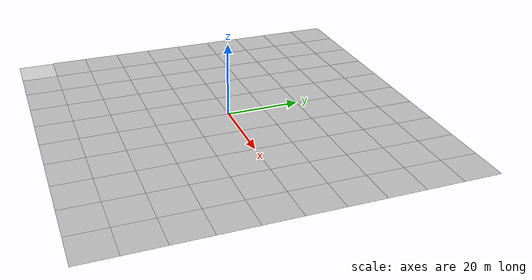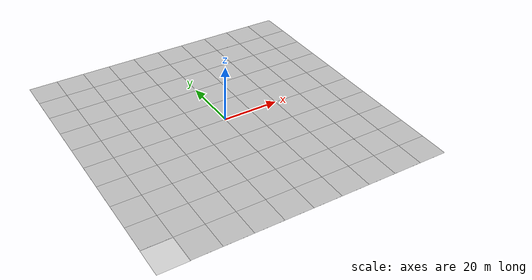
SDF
<sdf version="1.6">
 <world name="default">
  <physics type="ode">
   <ode>
    <solver><type>quick</type><iters>100</iters><sor>1.0</sor></solver>
    <constraints>
     <cfm>0.0</cfm>
     <erp>0.2</erp>
     <contact_max_correcting_vel>0.1</contact_max_correcting_vel>
     <contact_surface_layer>0.0</contact_surface_layer>
    </constraints>
   </ode>
   <real_time_update_rate>-1</real_time_update_rate>
  </physics>
  <gravity>0 0 -9.8</gravity>
  <include><uri>model://sun</uri></include>
  <include>
   <uri>file:///home/wintery/Projects/gazebo/models/orb_optimized_ground</uri>
   <name>ground_plane</name>
  </include>
 </world>
</sdf>

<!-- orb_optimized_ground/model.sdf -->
<sdf version="1.6">
  <model name="orb_optimized_ground">
    <static>true</static>
    <link name="ground_link">
      <pose>0 0 0 0 0 0</pose>
      <collision name="collision">
        <geometry>
          <plane>
            <normal>0 0 1</normal>
            <size>100 100</size>
          </plane>
        </geometry>
        <surface>
          <friction>
            <ode>
              <mu>1.0</mu>
              <mu2>1.0</mu2>
            </ode>
          </friction>
        </surface>
      </collision>
      <visual name="tile_00_00">
        <pose>-45.000 -45.000 0.001 0 0 0.00000</pose>
        <cast_shadows>false</cast_shadows>
        <geometry>
          <plane>
            <normal>0 0 1</normal>
            <size>10.0 10.0</size>
          </plane>
        </geometry>
        <material>
          <script>
            <uri>file:///home/wintery/Projects/gazebo/models/orb_optimized_ground/materials/scripts</uri>
            <uri>file:///home/wintery/Projects/gazebo/models/orb_optimized_ground/materials/textures</uri>
            <name>ORBOptimized/Tile000</name>
          </script>
        </material>
      </visual>
      <visual name="tile_00_01">
        <pose>-35.000 -45.000 0.001 0 0 0.00000</pose>
        <cast_shadows>false</cast_shadows>
        <geometry>
          <plane>
            <normal>0 0 1</normal>
            <size>10.0 10.0</size>
          </plane>
        </geometry>
        <material>
          <script>
            <uri>file:///home/wintery/Projects/gazebo/models/orb_optimized_ground/materials/scripts</uri>
            <uri>file:///home/wintery/Projects/gazebo/models/orb_optimized_ground/materials/textures</uri>
            <name>ORBOptimized/Tile001</name>
          </script>
        </material>
      </visual>
      <visual name="tile_00_02">
        <pose>-25.000 -45.000 0.001 0 0 0.00000</pose>
        <cast_shadows>false</cast_shadows>
        <geometry>
          <plane>
            <normal>0 0 1</normal>
            <size>10.0 10.0</size>
          </plane>
        </geometry>
        <material>
          <script>
            <uri>file:///home/wintery/Projects/gazebo/models/orb_optimized_ground/materials/scripts</uri>
            <uri>file:///home/wintery/Projects/gazebo/models/orb_optimized_ground/materials/textures</uri>
            <name>ORBOptimized/Tile002</name>
          </script>
        </material>
      </visual>
      <visual name="tile_00_03">
        <pose>-15.000 -45.000 0.001 0 0 0.00000</pose>
        <cast_shadows>false</cast_shadows>
        <geometry>
          <plane>
            <normal>0 0 1</normal>
            <size>10.0 10.0</size>
          </plane>
        </geometry>
        <material>
          <script>
            <uri>file:///home/wintery/Projects/gazebo/models/orb_optimized_ground/materials/scripts</uri>
            <uri>file:///home/wintery/Projects/gazebo/models/orb_optimized_ground/materials/textures</uri>
            <name>ORBOptimized/Tile003</name>
          </script>
        </material>
      </visual>
      <visual name="tile_00_04">
        <pose>-5.000 -45.000 0.001 0 0 0.00000</pose>
        <cast_shadows>false</cast_shadows>
        <geometry>
          <plane>
            <normal>0 0 1</normal>
            <size>10.0 10.0</size>
          </plane>
        </geometry>
        <material>
          <script>
            <uri>file:///home/wintery/Projects/gazebo/models/orb_optimized_ground/materials/scripts</uri>
            <uri>file:///home/wintery/Projects/gazebo/models/orb_optimized_ground/materials/textures</uri>
            <name>ORBOptimized/Tile004</name>
          </script>
        </material>
      </visual>
      <visual name="tile_00_05">
        <pose>5.000 -45.000 0.001 0 0 0.00000</pose>
        <cast_shadows>false</cast_shadows>
        <geometry>
          <plane>
            <normal>0 0 1</normal>
            <size>10.0 10.0</size>
          </plane>
        </geometry>
        <material>
          <script>
            <uri>file:///home/wintery/Projects/gazebo/models/orb_optimized_ground/materials/scripts</uri>
            <uri>file:///home/wintery/Projects/gazebo/models/orb_optimized_ground/materials/textures</uri>
            <name>ORBOptimized/Tile005</name>
          </script>
        </material>
      </visual>
      <visual name="tile_00_06">
        <pose>15.000 -45.000 0.001 0 0 0.00000</pose>
        <cast_shadows>false</cast_shadows>
        <geometry>
          <plane>
            <normal>0 0 1</normal>
            <size>10.0 10.0</size>
          </plane>
        </geometry>
        <material>
          <script>
            <uri>file:///home/wintery/Projects/gazebo/models/orb_optimized_ground/materials/scripts</uri>
            <uri>file:///home/wintery/Projects/gazebo/models/orb_optimized_ground/materials/textures</uri>
            <name>ORBOptimized/Tile006</name>
          </script>
        </material>
      </visual>
      <visual name="tile_00_07">
        <pose>25.000 -45.000 0.001 0 0 0.00000</pose>
        <cast_shadows>false</cast_shadows>
        <geometry>
          <plane>
            <normal>0 0 1</normal>
            <size>10.0 10.0</size>
          </plane>
        </geometry>
        <material>
          <script>
            <uri>file:///home/wintery/Projects/gazebo/models/orb_optimized_ground/materials/scripts</uri>
            <uri>file:///home/wintery/Projects/gazebo/models/orb_optimized_ground/materials/textures</uri>
            <name>ORBOptimized/Tile007</name>
          </script>
        </material>
      </visual>
      <visual name="tile_00_08">
        <pose>35.000 -45.000 0.001 0 0 0.00000</pose>
        <cast_shadows>false</cast_shadows>
        <geometry>
          <plane>
            <normal>0 0 1</normal>
            <size>10.0 10.0</size>
          </plane>
        </geometry>
        <material>
          <script>
            <uri>file:///home/wintery/Projects/gazebo/models/orb_optimized_ground/materials/scripts</uri>
            <uri>file:///home/wintery/Projects/gazebo/models/orb_optimized_ground/materials/textures</uri>
            <name>ORBOptimized/Tile008</name>
          </script>
        </material>
      </visual>
      <visual name="tile_00_09">
        <pose>45.000 -45.000 0.001 0 0 0.00000</pose>
        <cast_shadows>false</cast_shadows>
        <geometry>
          <plane>
            <normal>0 0 1</normal>
            <size>10.0 10.0</size>
          </plane>
        </geometry>
        <material>
          <script>
            <uri>file:///home/wintery/Projects/gazebo/models/orb_optimized_ground/materials/scripts</uri>
            <uri>file:///home/wintery/Projects/gazebo/models/orb_optimized_ground/materials/textures</uri>
            <name>ORBOptimized/Tile009</name>
          </script>
        </material>
      </visual>
      <visual name="tile_01_00">
        <pose>-45.000 -35.000 0.001 0 0 0.00000</pose>
        <cast_shadows>false</cast_shadows>
        <geometry>
          <plane>
            <normal>0 0 1</normal>
            <size>10.0 10.0</size>
          </plane>
        </geometry>
        <material>
          <script>
            <uri>file:///home/wintery/Projects/gazebo/models/orb_optimized_ground/materials/scripts</uri>
            <uri>file:///home/wintery/Projects/gazebo/models/orb_optimized_ground/materials/textures</uri>
            <name>ORBOptimized/Tile010</name>
          </script>
        </material>
      </visual>
      <visual name="tile_01_01">
        <pose>-35.000 -35.000 0.001 0 0 0.00000</pose>
        <cast_shadows>false</cast_shadows>
        <geometry>
          <plane>
            <normal>0 0 1</normal>
            <size>10.0 10.0</size>
          </plane>
        </geometry>
        <material>
          <script>
            <uri>file:///home/wintery/Projects/gazebo/models/orb_optimized_ground/materials/scripts</uri>
            <uri>file:///home/wintery/Projects/gazebo/models/orb_optimized_ground/materials/textures</uri>
            <name>ORBOptimized/Tile011</name>
          </script>
        </material>
      </visual>
      <visual name="tile_01_02">
        <pose>-25.000 -35.000 0.001 0 0 0.00000</pose>
        <cast_shadows>false</cast_shadows>
        <geometry>
          <plane>
            <normal>0 0 1</normal>
            <size>10.0 10.0</size>
          </plane>
        </geometry>
        <material>
          <script>
            <uri>file:///home/wintery/Projects/gazebo/models/orb_optimized_ground/materials/scripts</uri>
            <uri>file:///home/wintery/Projects/gazebo/models/orb_optimized_ground/materials/textures</uri>
            <name>ORBOptimized/Tile012</name>
          </script>
        </material>
      </visual>
      <visual name="tile_01_03">
        <pose>-15.000 -35.000 0.001 0 0 0.00000</pose>
        <cast_shadows>false</cast_shadows>
        <geometry>
          <plane>
            <normal>0 0 1</normal>
            <size>10.0 10.0</size>
          </plane>
        </geometry>
        <material>
          <script>
            <uri>file:///home/wintery/Projects/gazebo/models/orb_optimized_ground/materials/scripts</uri>
            <uri>file:///home/wintery/Projects/gazebo/models/orb_optimized_ground/materials/textures</uri>
            <name>ORBOptimized/Tile013</name>
          </script>
        </material>
      </visual>
      <visual name="tile_01_04">
        <pose>-5.000 -35.000 0.001 0 0 0.00000</pose>
        <cast_shadows>false</cast_shadows>
        <geometry>
          <plane>
            <normal>0 0 1</normal>
            <size>10.0 10.0</size>
          </plane>
        </geometry>
        <material>
          <script>
            <uri>file:///home/wintery/Projects/gazebo/models/orb_optimized_ground/materials/scripts</uri>
            <uri>file:///home/wintery/Projects/gazebo/models/orb_optimized_ground/materials/textures</uri>
            <name>ORBOptimized/Tile014</name>
          </script>
        </material>
      </visual>
      <visual name="tile_01_05">
        <pose>5.000 -35.000 0.001 0 0 0.00000</pose>
        <cast_shadows>false</cast_shadows>
        <geometry>
          <plane>
            <normal>0 0 1</normal>
            <size>10.0 10.0</size>
          </plane>
        </geometry>
        <material>
          <script>
            <uri>file:///home/wintery/Projects/gazebo/models/orb_optimized_ground/materials/scripts</uri>
            <uri>file:///home/wintery/Projects/gazebo/models/orb_optimized_ground/materials/textures</uri>
            <name>ORBOptimized/Tile015</name>
          </script>
        </material>
      </visual>
      <visual name="tile_01_06">
        <pose>15.000 -35.000 0.001 0 0 0.00000</pose>
        <cast_shadows>false</cast_shadows>
        <geometry>
          <plane>
            <normal>0 0 1</normal>
            <size>10.0 10.0</size>
          </plane>
        </geometry>
        <material>
          <script>
            <uri>file:///home/wintery/Projects/gazebo/models/orb_optimized_ground/materials/scripts</uri>
            <uri>file:///home/wintery/Projects/gazebo/models/orb_optimized_ground/materials/textures</uri>
            <name>ORBOptimized/Tile016</name>
          </script>
        </material>
      </visual>
      <visual name="tile_01_07">
        <pose>25.000 -35.000 0.001 0 0 0.00000</pose>
        <cast_shadows>false</cast_shadows>
        <geometry>
          <plane>
            <normal>0 0 1</normal>
            <size>10.0 10.0</size>
          </plane>
        </geometry>
        <material>
          <script>
            <uri>file:///home/wintery/Projects/gazebo/models/orb_optimized_ground/materials/scripts</uri>
            <uri>file:///home/wintery/Projects/gazebo/models/orb_optimized_ground/materials/textures</uri>
            <name>ORBOptimized/Tile017</name>
          </script>
        </material>
      </visual>
      <visual name="tile_01_08">
        <pose>35.000 -35.000 0.001 0 0 0.00000</pose>
        <cast_shadows>false</cast_shadows>
        <geometry>
          <plane>
            <normal>0 0 1</normal>
            <size>10.0 10.0</size>
          </plane>
        </geometry>
        <material>
          <script>
            <uri>file:///home/wintery/Projects/gazebo/models/orb_optimized_ground/materials/scripts</uri>
            <uri>file:///home/wintery/Projects/gazebo/models/orb_optimized_ground/materials/textures</uri>
            <name>ORBOptimized/Tile018</name>
          </script>
        </material>
      </visual>
      <visual name="tile_01_09">
        <pose>45.000 -35.000 0.001 0 0 0.00000</pose>
        <cast_shadows>false</cast_shadows>
        <geometry>
          <plane>
            <normal>0 0 1</normal>
            <size>10.0 10.0</size>
          </plane>
        </geometry>
        <material>
          <script>
            <uri>file:///home/wintery/Projects/gazebo/models/orb_optimized_ground/materials/scripts</uri>
            <uri>file:///home/wintery/Projects/gazebo/models/orb_optimized_ground/materials/textures</uri>
            <name>ORBOptimized/Tile019</name>
          </script>
        </material>
      </visual>
      <visual name="tile_02_00">
        <pose>-45.000 -25.000 0.001 0 0 0.00000</pose>
        <cast_shadows>false</cast_shadows>
        <geometry>
          <plane>
            <normal>0 0 1</normal>
            <size>10.0 10.0</size>
          </plane>
        </geometry>
        <material>
          <script>
            <uri>file:///home/wintery/Projects/gazebo/models/orb_optimized_ground/materials/scripts</uri>
            <uri>file:///home/wintery/Projects/gazebo/models/orb_optimized_ground/materials/textures</uri>
            <name>ORBOptimized/Tile020</name>
          </script>
        </material>
      </visual>
      <visual name="tile_02_01">
        <pose>-35.000 -25.000 0.001 0 0 0.00000</pose>
        <cast_shadows>false</cast_shadows>
        <geometry>
          <plane>
            <normal>0 0 1</normal>
            <size>10.0 10.0</size>
          </plane>
        </geometry>
        <material>
          <script>
            <uri>file:///home/wintery/Projects/gazebo/models/orb_optimized_ground/materials/scripts</uri>
            <uri>file:///home/wintery/Projects/gazebo/models/orb_optimized_ground/materials/textures</uri>
            <name>ORBOptimized/Tile021</name>
          </script>
        </material>
      </visual>
      <visual name="tile_02_02">
        <pose>-25.000 -25.000 0.001 0 0 0.00000</pose>
        <cast_shadows>false</cast_shadows>
        <geometry>
          <plane>
            <normal>0 0 1</normal>
            <size>10.0 10.0</size>
          </plane>
        </geometry>
        <material>
          <script>
            <uri>file:///home/wintery/Projects/gazebo/models/orb_optimized_ground/materials/scripts</uri>
            <uri>file:///home/wintery/Projects/gazebo/models/orb_optimized_ground/materials/textures</uri>
            <name>ORBOptimized/Tile022</name>
          </script>
        </material>
      </visual>
      <visual name="tile_02_03">
        <pose>-15.000 -25.000 0.001 0 0 0.00000</pose>
        <cast_shadows>false</cast_shadows>
        <geometry>
          <plane>
            <normal>0 0 1</normal>
            <size>10.0 10.0</size>
          </plane>
        </geometry>
        <material>
          <script>
            <uri>file:///home/wintery/Projects/gazebo/models/orb_optimized_ground/materials/scripts</uri>
            <uri>file:///home/wintery/Projects/gazebo/models/orb_optimized_ground/materials/textures</uri>
            <name>ORBOptimized/Tile023</name>
          </script>
        </material>
      </visual>
      <visual name="tile_02_04">
        <pose>-5.000 -25.000 0.001 0 0 0.00000</pose>
        <cast_shadows>false</cast_shadows>
        <geometry>
          <plane>
            <normal>0 0 1</normal>
            <size>10.0 10.0</size>
          </plane>
        </geometry>
        <material>
          <script>
            <uri>file:///home/wintery/Projects/gazebo/models/orb_optimized_ground/materials/scripts</uri>
            <uri>file:///home/wintery/Projects/gazebo/models/orb_optimized_ground/materials/textures</uri>
            <name>ORBOptimized/Tile024</name>
          </script>
        </material>
      </visual>
      <visual name="tile_02_05">
        <pose>5.000 -25.000 0.001 0 0 0.00000</pose>
        <cast_shadows>false</cast_shadows>
        <geometry>
          <plane>
            <normal>0 0 1</normal>
            <size>10.0 10.0</size>
          </plane>
        </geometry>
        <material>
          <script>
            <uri>file:///home/wintery/Projects/gazebo/models/orb_optimized_ground/materials/scripts</uri>
            <uri>file:///home/wintery/Projects/gazebo/models/orb_optimized_ground/materials/textures</uri>
            <name>ORBOptimized/Tile025</name>
          </script>
        </material>
      </visual>
      <visual name="tile_02_06">
        <pose>15.000 -25.000 0.001 0 0 0.00000</pose>
        <cast_shadows>false</cast_shadows>
        <geometry>
          <plane>
            <normal>0 0 1</normal>
            <size>10.0 10.0</size>
          </plane>
        </geometry>
        <material>
          <script>
            <uri>file:///home/wintery/Projects/gazebo/models/orb_optimized_ground/materials/scripts</uri>
            <uri>file:///home/wintery/Projects/gazebo/models/orb_optimized_ground/materials/textures</uri>
            <name>ORBOptimized/Tile026</name>
          </script>
        </material>
      </visual>
      <visual name="tile_02_07">
        <pose>25.000 -25.000 0.001 0 0 0.00000</pose>
        <cast_shadows>false</cast_shadows>
        <geometry>
          <plane>
            <normal>0 0 1</normal>
            <size>10.0 10.0</size>
          </plane>
        </geometry>
        <material>
          <script>
            <uri>file:///home/wintery/Projects/gazebo/models/orb_optimized_ground/materials/scripts</uri>
            <uri>file:///home/wintery/Projects/gazebo/models/orb_optimized_ground/materials/textures</uri>
            <name>ORBOptimized/Tile027</name>
          </script>
        </material>
      </visual>
      <visual name="tile_02_08">
        <pose>35.000 -25.000 0.001 0 0 0.00000</pose>
        <cast_shadows>false</cast_shadows>
        <geometry>
          <plane>
            <normal>0 0 1</normal>
            <size>10.0 10.0</size>
          </plane>
        </geometry>
        <material>
          <script>
            <uri>file:///home/wintery/Projects/gazebo/models/orb_optimized_ground/materials/scripts</uri>
            <uri>file:///home/wintery/Projects/gazebo/models/orb_optimized_ground/materials/textures</uri>
            <name>ORBOptimized/Tile028</name>
          </script>
        </material>
      </visual>
      <visual name="tile_02_09">
        <pose>45.000 -25.000 0.001 0 0 0.00000</pose>
        <cast_shadows>false</cast_shadows>
        <geometry>
          <plane>
            <normal>0 0 1</normal>
            <size>10.0 10.0</size>
          </plane>
        </geometry>
        <material>
          <script>
            <uri>file:///home/wintery/Projects/gazebo/models/orb_optimized_ground/materials/scripts</uri>
            <uri>file:///home/wintery/Projects/gazebo/models/orb_optimized_ground/materials/textures</uri>
            <name>ORBOptimized/Tile029</name>
          </script>
        </material>
      </visual>
      <visual name="tile_03_00">
        <pose>-45.000 -15.000 0.001 0 0 0.00000</pose>
        <cast_shadows>false</cast_shadows>
        <geometry>
          <plane>
            <normal>0 0 1</normal>
            <size>10.0 10.0</size>
          </plane>
        </geometry>
        <material>
          <script>
            <uri>file:///home/wintery/Projects/gazebo/models/orb_optimized_ground/materials/scripts</uri>
            <uri>file:///home/wintery/Projects/gazebo/models/orb_optimized_ground/materials/textures</uri>
            <name>ORBOptimized/Tile030</name>
          </script>
        </material>
      </visual>
      <visual name="tile_03_01">
        <pose>-35.000 -15.000 0.001 0 0 0.00000</pose>
        <cast_shadows>false</cast_shadows>
        <geometry>
          <plane>
            <normal>0 0 1</normal>
            <size>10.0 10.0</size>
          </plane>
        </geometry>
        <material>
          <script>
            <uri>file:///home/wintery/Projects/gazebo/models/orb_optimized_ground/materials/scripts</uri>
            <uri>file:///home/wintery/Projects/gazebo/models/orb_optimized_ground/materials/textures</uri>
            <name>ORBOptimized/Tile031</name>
          </script>
        </material>
      </visual>
      <visual name="tile_03_02">
        <pose>-25.000 -15.000 0.001 0 0 0.00000</pose>
        <cast_shadows>false</cast_shadows>
        <geometry>
          <plane>
            <normal>0 0 1</normal>
            <size>10.0 10.0</size>
          </plane>
        </geometry>
        <material>
          <script>
            <uri>file:///home/wintery/Projects/gazebo/models/orb_optimized_ground/materials/scripts</uri>
            <uri>file:///home/wintery/Projects/gazebo/models/orb_optimized_ground/materials/textures</uri>
            <name>ORBOptimized/Tile032</name>
          </script>
        </material>
      </visual>
      <visual name="tile_03_03">
        <pose>-15.000 -15.000 0.001 0 0 0.00000</pose>
        <cast_shadows>false</cast_shadows>
        <geometry>
          <plane>
            <normal>0 0 1</normal>
            <size>10.0 10.0</size>
          </plane>
        </geometry>
        <material>
          <script>
            <uri>file:///home/wintery/Projects/gazebo/models/orb_optimized_ground/materials/scripts</uri>
            <uri>file:///home/wintery/Projects/gazebo/models/orb_optimized_ground/materials/textures</uri>
            <name>ORBOptimized/Tile033</name>
          </script>
        </material>
      </visual>
      <visual name="tile_03_04">
        <pose>-5.000 -15.000 0.001 0 0 0.00000</pose>
        <cast_shadows>false</cast_shadows>
        <geometry>
          <plane>
            <normal>0 0 1</normal>
            <size>10.0 10.0</size>
          </plane>
        </geometry>
        <material>
          <script>
            <uri>file:///home/wintery/Projects/gazebo/models/orb_optimized_ground/materials/scripts</uri>
            <uri>file:///home/wintery/Projects/gazebo/models/orb_optimized_ground/materials/textures</uri>
            <name>ORBOptimized/Tile034</name>
          </script>
        </material>
      </visual>
      <visual name="tile_03_05">
        <pose>5.000 -15.000 0.001 0 0 0.00000</pose>
        <cast_shadows>false</cast_shadows>
        <geometry>
          <plane>
            <normal>0 0 1</normal>
            <size>10.0 10.0</size>
          </plane>
        </geometry>
        <material>
          <script>
            <uri>file:///home/wintery/Projects/gazebo/models/orb_optimized_ground/materials/scripts</uri>
            <uri>file:///home/wintery/Projects/gazebo/models/orb_optimized_ground/materials/textures</uri>
            <name>ORBOptimized/Tile035</name>
          </script>
        </material>
      </visual>
      <visual name="tile_03_06">
        <pose>15.000 -15.000 0.001 0 0 0.00000</pose>
        <cast_shadows>false</cast_shadows>
        <geometry>
          <plane>
            <normal>0 0 1</normal>
            <size>10.0 10.0</size>
          </plane>
        </geometry>
        <material>
          <script>
            <uri>file:///home/wintery/Projects/gazebo/models/orb_optimized_ground/materials/scripts</uri>
            <uri>file:///home/wintery/Projects/gazebo/models/orb_optimized_ground/materials/textures</uri>
            <name>ORBOptimized/Tile036</name>
          </script>
        </material>
      </visual>
      <visual name="tile_03_07">
        <pose>25.000 -15.000 0.001 0 0 0.00000</pose>
        <cast_shadows>false</cast_shadows>
        <geometry>
          <plane>
            <normal>0 0 1</normal>
            <size>10.0 10.0</size>
          </plane>
        </geometry>
        <material>
          <script>
            <uri>file:///home/wintery/Projects/gazebo/models/orb_optimized_ground/materials/scripts</uri>
            <uri>file:///home/wintery/Projects/gazebo/models/orb_optimized_ground/materials/textures</uri>
            <name>ORBOptimized/Tile037</name>
          </script>
        </material>
      </visual>
      <visual name="tile_03_08">
        <pose>35.000 -15.000 0.001 0 0 0.00000</pose>
        <cast_shadows>false</cast_shadows>
        <geometry>
          <plane>
            <normal>0 0 1</normal>
            <size>10.0 10.0</size>
          </plane>
        </geometry>
        <material>
          <script>
            <uri>file:///home/wintery/Projects/gazebo/models/orb_optimized_ground/materials/scripts</uri>
            <uri>file:///home/wintery/Projects/gazebo/models/orb_optimized_ground/materials/textures</uri>
            <name>ORBOptimized/Tile038</name>
          </script>
        </material>
      </visual>
      <visual name="tile_03_09">
        <pose>45.000 -15.000 0.001 0 0 0.00000</pose>
        <cast_shadows>false</cast_shadows>
        <geometry>
          <plane>
            <normal>0 0 1</normal>
            <size>10.0 10.0</size>
          </plane>
        </geometry>
        <material>
          <script>
            <uri>file:///home/wintery/Projects/gazebo/models/orb_optimized_ground/materials/scripts</uri>
            <uri>file:///home/wintery/Projects/gazebo/models/orb_optimized_ground/materials/textures</uri>
            <name>ORBOptimized/Tile039</name>
          </script>
        </material>
      </visual>
      <visual name="tile_04_00">
        <pose>-45.000 -5.000 0.001 0 0 0.00000</pose>
        <cast_shadows>false</cast_shadows>
        <geometry>
          <plane>
            <normal>0 0 1</normal>
            <size>10.0 10.0</size>
          </plane>
        </geometry>
        <material>
          <script>
            <uri>file:///home/wintery/Projects/gazebo/models/orb_optimized_ground/materials/scripts</uri>
            <uri>file:///home/wintery/Projects/gazebo/models/orb_optimized_ground/materials/textures</uri>
            <name>ORBOptimized/Tile040</name>
          </script>
        </material>
      </visual>
      <visual name="tile_04_01">
        <pose>-35.000 -5.000 0.001 0 0 0.00000</pose>
        <cast_shadows>false</cast_shadows>
        <geometry>
          <plane>
            <normal>0 0 1</normal>
            <size>10.0 10.0</size>
          </plane>
        </geometry>
        <material>
          <script>
            <uri>file:///home/wintery/Projects/gazebo/models/orb_optimized_ground/materials/scripts</uri>
            <uri>file:///home/wintery/Projects/gazebo/models/orb_optimized_ground/materials/textures</uri>
            <name>ORBOptimized/Tile041</name>
          </script>
        </material>
      </visual>
      <visual name="tile_04_02">
        <pose>-25.000 -5.000 0.001 0 0 0.00000</pose>
        <cast_shadows>false</cast_shadows>
        <geometry>
          <plane>
            <normal>0 0 1</normal>
            <size>10.0 10.0</size>
          </plane>
        </geometry>
        <material>
          <script>
            <uri>file:///home/wintery/Projects/gazebo/models/orb_optimized_ground/materials/scripts</uri>
            <uri>file:///home/wintery/Projects/gazebo/models/orb_optimized_ground/materials/textures</uri>
            <name>ORBOptimized/Tile042</name>
          </script>
        </material>
      </visual>
      <visual name="tile_04_03">
        <pose>-15.000 -5.000 0.001 0 0 0.00000</pose>
        <cast_shadows>false</cast_shadows>
        <geometry>
          <plane>
            <normal>0 0 1</normal>
            <size>10.0 10.0</size>
          </plane>
        </geometry>
        <material>
          <script>
            <uri>file:///home/wintery/Projects/gazebo/models/orb_optimized_ground/materials/scripts</uri>
            <uri>file:///home/wintery/Projects/gazebo/models/orb_optimized_ground/materials/textures</uri>
            <name>ORBOptimized/Tile043</name>
          </script>
        </material>
      </visual>
      <visual name="tile_04_04">
        <pose>-5.000 -5.000 0.001 0 0 0.00000</pose>
        <cast_shadows>false</cast_shadows>
        <geometry>
          <plane>
            <normal>0 0 1</normal>
            <size>10.0 10.0</size>
          </plane>
        </geometry>
        <material>
          <script>
            <uri>file:///home/wintery/Projects/gazebo/models/orb_optimized_ground/materials/scripts</uri>
            <uri>file:///home/wintery/Projects/gazebo/models/orb_optimized_ground/materials/textures</uri>
            <name>ORBOptimized/Tile044</name>
          </script>
        </material>
      </visual>
      <visual name="tile_04_05">
        <pose>5.000 -5.000 0.001 0 0 0.00000</pose>
        <cast_shadows>false</cast_shadows>
        <geometry>
          <plane>
            <normal>0 0 1</normal>
            <size>10.0 10.0</size>
          </plane>
        </geometry>
        <material>
          <script>
            <uri>file:///home/wintery/Projects/gazebo/models/orb_optimized_ground/materials/scripts</uri>
            <uri>file:///home/wintery/Projects/gazebo/models/orb_optimized_ground/materials/textures</uri>
            <name>ORBOptimized/Tile045</name>
          </script>
        </material>
      </visual>
      <visual name="tile_04_06">
        <pose>15.000 -5.000 0.001 0 0 0.00000</pose>
        <cast_shadows>false</cast_shadows>
        <geometry>
          <plane>
            <normal>0 0 1</normal>
            <size>10.0 10.0</size>
          </plane>
        </geometry>
        <material>
          <script>
            <uri>file:///home/wintery/Projects/gazebo/models/orb_optimized_ground/materials/scripts</uri>
            <uri>file:///home/wintery/Projects/gazebo/models/orb_optimized_ground/materials/textures</uri>
            <name>ORBOptimized/Tile046</name>
          </script>
        </material>
      </visual>
      <visual name="tile_04_07">
        <pose>25.000 -5.000 0.001 0 0 0.00000</pose>
        <cast_shadows>false</cast_shadows>
        <geometry>
          <plane>
            <normal>0 0 1</normal>
            <size>10.0 10.0</size>
          </plane>
        </geometry>
        <material>
          <script>
            <uri>file:///home/wintery/Projects/gazebo/models/orb_optimized_ground/materials/scripts</uri>
            <uri>file:///home/wintery/Projects/gazebo/models/orb_optimized_ground/materials/textures</uri>
            <name>ORBOptimized/Tile047</name>
          </script>
        </material>
      </visual>
      <visual name="tile_04_08">
        <pose>35.000 -5.000 0.001 0 0 0.00000</pose>
        <cast_shadows>false</cast_shadows>
        <geometry>
          <plane>
            <normal>0 0 1</normal>
            <size>10.0 10.0</size>
          </plane>
        </geometry>
        <material>
          <script>
            <uri>file:///home/wintery/Projects/gazebo/models/orb_optimized_ground/materials/scripts</uri>
            <uri>file:///home/wintery/Projects/gazebo/models/orb_optimized_ground/materials/textures</uri>
            <name>ORBOptimized/Tile048</name>
          </script>
        </material>
      </visual>
      <visual name="tile_04_09">
        <pose>45.000 -5.000 0.001 0 0 0.00000</pose>
        <cast_shadows>false</cast_shadows>
        <geometry>
          <plane>
            <normal>0 0 1</normal>
            <size>10.0 10.0</size>
          </plane>
        </geometry>
        <material>
          <script>
            <uri>file:///home/wintery/Projects/gazebo/models/orb_optimized_ground/materials/scripts</uri>
            <uri>file:///home/wintery/Projects/gazebo/models/orb_optimized_ground/materials/textures</uri>
            <name>ORBOptimized/Tile049</name>
          </script>
        </material>
      </visual>
      <visual name="tile_05_00">
        <pose>-45.000 5.000 0.001 0 0 0.00000</pose>
        <cast_shadows>false</cast_shadows>
        <geometry>
          <plane>
            <normal>0 0 1</normal>
            <size>10.0 10.0</size>
          </plane>
        </geometry>
        <material>
          <script>
            <uri>file:///home/wintery/Projects/gazebo/models/orb_optimized_ground/materials/scripts</uri>
            <uri>file:///home/wintery/Projects/gazebo/models/orb_optimized_ground/materials/textures</uri>
            <name>ORBOptimized/Tile050</name>
          </script>
        </material>
      </visual>
      <visual name="tile_05_01">
        <pose>-35.000 5.000 0.001 0 0 0.00000</pose>
        <cast_shadows>false</cast_shadows>
        <geometry>
          <plane>
            <normal>0 0 1</normal>
            <size>10.0 10.0</size>
          </plane>
        </geometry>
        <material>
          <script>
            <uri>file:///home/wintery/Projects/gazebo/models/orb_optimized_ground/materials/scripts</uri>
            <uri>file:///home/wintery/Projects/gazebo/models/orb_optimized_ground/materials/textures</uri>
            <name>ORBOptimized/Tile051</name>
          </script>
        </material>
      </visual>
      <visual name="tile_05_02">
        <pose>-25.000 5.000 0.001 0 0 0.00000</pose>
        <cast_shadows>false</cast_shadows>
        <geometry>
          <plane>
            <normal>0 0 1</normal>
            <size>10.0 10.0</size>
          </plane>
        </geometry>
        <material>
          <script>
            <uri>file:///home/wintery/Projects/gazebo/models/orb_optimized_ground/materials/scripts</uri>
            <uri>file:///home/wintery/Projects/gazebo/models/orb_optimized_ground/materials/textures</uri>
            <name>ORBOptimized/Tile052</name>
          </script>
        </material>
      </visual>
      <visual name="tile_05_03">
        <pose>-15.000 5.000 0.001 0 0 0.00000</pose>
        <cast_shadows>false</cast_shadows>
        <geometry>
          <plane>
            <normal>0 0 1</normal>
            <size>10.0 10.0</size>
          </plane>
        </geometry>
        <material>
          <script>
            <uri>file:///home/wintery/Projects/gazebo/models/orb_optimized_ground/materials/scripts</uri>
            <uri>file:///home/wintery/Projects/gazebo/models/orb_optimized_ground/materials/textures</uri>
            <name>ORBOptimized/Tile053</name>
          </script>
        </material>
      </visual>
      <visual name="tile_05_04">
        <pose>-5.000 5.000 0.001 0 0 0.00000</pose>
        <cast_shadows>false</cast_shadows>
        <geometry>
          <plane>
            <normal>0 0 1</normal>
            <size>10.0 10.0</size>
          </plane>
        </geometry>
        <material>
          <script>
            <uri>file:///home/wintery/Projects/gazebo/models/orb_optimized_ground/materials/scripts</uri>
            <uri>file:///home/wintery/Projects/gazebo/models/orb_optimized_ground/materials/textures</uri>
            <name>ORBOptimized/Tile054</name>
          </script>
        </material>
      </visual>
      <visual name="tile_05_05">
        <pose>5.000 5.000 0.001 0 0 0.00000</pose>
        <cast_shadows>false</cast_shadows>
        <geometry>
          <plane>
            <normal>0 0 1</normal>
            <size>10.0 10.0</size>
          </plane>
        </geometry>
        <material>
          <script>
            <uri>file:///home/wintery/Projects/gazebo/models/orb_optimized_ground/materials/scripts</uri>
            <uri>file:///home/wintery/Projects/gazebo/models/orb_optimized_ground/materials/textures</uri>
            <name>ORBOptimized/Tile055</name>
          </script>
        </material>
      </visual>
      <visual name="tile_05_06">
        <pose>15.000 5.000 0.001 0 0 0.00000</pose>
        <cast_shadows>false</cast_shadows>
        <geometry>
          <plane>
            <normal>0 0 1</normal>
            <size>10.0 10.0</size>
          </plane>
        </geometry>
        <material>
          <script>
            <uri>file:///home/wintery/Projects/gazebo/models/orb_optimized_ground/materials/scripts</uri>
            <uri>file:///home/wintery/Projects/gazebo/models/orb_optimized_ground/materials/textures</uri>
            <name>ORBOptimized/Tile056</name>
          </script>
        </material>
      </visual>
      <visual name="tile_05_07">
        <pose>25.000 5.000 0.001 0 0 0.00000</pose>
        <cast_shadows>false</cast_shadows>
        <geometry>
          <plane>
            <normal>0 0 1</normal>
            <size>10.0 10.0</size>
          </plane>
        </geometry>
        <material>
          <script>
            <uri>file:///home/wintery/Projects/gazebo/models/orb_optimized_ground/materials/scripts</uri>
            <uri>file:///home/wintery/Projects/gazebo/models/orb_optimized_ground/materials/textures</uri>
            <name>ORBOptimized/Tile057</name>
          </script>
        </material>
      </visual>
      <visual name="tile_05_08">
        <pose>35.000 5.000 0.001 0 0 0.00000</pose>
        <cast_shadows>false</cast_shadows>
        <geometry>
          <plane>
            <normal>0 0 1</normal>
            <size>10.0 10.0</size>
          </plane>
        </geometry>
        <material>
          <script>
            <uri>file:///home/wintery/Projects/gazebo/models/orb_optimized_ground/materials/scripts</uri>
            <uri>file:///home/wintery/Projects/gazebo/models/orb_optimized_ground/materials/textures</uri>
            <name>ORBOptimized/Tile058</name>
          </script>
        </material>
      </visual>
      <visual name="tile_05_09">
        <pose>45.000 5.000 0.001 0 0 0.00000</pose>
        <cast_shadows>false</cast_shadows>
        <geometry>
          <plane>
            <normal>0 0 1</normal>
            <size>10.0 10.0</size>
          </plane>
        </geometry>
        <material>
          <script>
            <uri>file:///home/wintery/Projects/gazebo/models/orb_optimized_ground/materials/scripts</uri>
            <uri>file:///home/wintery/Projects/gazebo/models/orb_optimized_ground/materials/textures</uri>
            <name>ORBOptimized/Tile059</name>
          </script>
        </material>
      </visual>
      <visual name="tile_06_00">
        <pose>-45.000 15.000 0.001 0 0 0.00000</pose>
        <cast_shadows>false</cast_shadows>
        <geometry>
          <plane>
            <normal>0 0 1</normal>
            <size>10.0 10.0</size>
          </plane>
        </geometry>
        <material>
          <script>
            <uri>file:///home/wintery/Projects/gazebo/models/orb_optimized_ground/materials/scripts</uri>
            <uri>file:///home/wintery/Projects/gazebo/models/orb_optimized_ground/materials/textures</uri>
            <name>ORBOptimized/Tile060</name>
          </script>
        </material>
      </visual>
      <visual name="tile_06_01">
        <pose>-35.000 15.000 0.001 0 0 0.00000</pose>
        <cast_shadows>false</cast_shadows>
        <geometry>
          <plane>
            <normal>0 0 1</normal>
            <size>10.0 10.0</size>
          </plane>
        </geometry>
        <material>
          <script>
            <uri>file:///home/wintery/Projects/gazebo/models/orb_optimized_ground/materials/scripts</uri>
            <uri>file:///home/wintery/Projects/gazebo/models/orb_optimized_ground/materials/textures</uri>
            <name>ORBOptimized/Tile061</name>
          </script>
        </material>
      </visual>
      <visual name="tile_06_02">
        <pose>-25.000 15.000 0.001 0 0 0.00000</pose>
        <cast_shadows>false</cast_shadows>
        <geometry>
          <plane>
            <normal>0 0 1</normal>
            <size>10.0 10.0</size>
          </plane>
        </geometry>
        <material>
          <script>
            <uri>file:///home/wintery/Projects/gazebo/models/orb_optimized_ground/materials/scripts</uri>
            <uri>file:///home/wintery/Projects/gazebo/models/orb_optimized_ground/materials/textures</uri>
            <name>ORBOptimized/Tile062</name>
          </script>
        </material>
      </visual>
      <visual name="tile_06_03">
        <pose>-15.000 15.000 0.001 0 0 0.00000</pose>
        <cast_shadows>false</cast_shadows>
        <geometry>
          <plane>
            <normal>0 0 1</normal>
            <size>10.0 10.0</size>
          </plane>
        </geometry>
        <material>
          <script>
            <uri>file:///home/wintery/Projects/gazebo/models/orb_optimized_ground/materials/scripts</uri>
            <uri>file:///home/wintery/Projects/gazebo/models/orb_optimized_ground/materials/textures</uri>
            <name>ORBOptimized/Tile063</name>
          </script>
        </material>
      </visual>
      <visual name="tile_06_04">
        <pose>-5.000 15.000 0.001 0 0 0.00000</pose>
        <cast_shadows>false</cast_shadows>
        <geometry>
          <plane>
            <normal>0 0 1</normal>
            <size>10.0 10.0</size>
          </plane>
        </geometry>
        <material>
          <script>
            <uri>file:///home/wintery/Projects/gazebo/models/orb_optimized_ground/materials/scripts</uri>
            <uri>file:///home/wintery/Projects/gazebo/models/orb_optimized_ground/materials/textures</uri>
            <name>ORBOptimized/Tile064</name>
          </script>
        </material>
      </visual>
      <visual name="tile_06_05">
        <pose>5.000 15.000 0.001 0 0 0.00000</pose>
        <cast_shadows>false</cast_shadows>
        <geometry>
          <plane>
            <normal>0 0 1</normal>
            <size>10.0 10.0</size>
          </plane>
        </geometry>
        <material>
          <script>
            <uri>file:///home/wintery/Projects/gazebo/models/orb_optimized_ground/materials/scripts</uri>
            <uri>file:///home/wintery/Projects/gazebo/models/orb_optimized_ground/materials/textures</uri>
            <name>ORBOptimized/Tile065</name>
          </script>
        </material>
      </visual>
      <visual name="tile_06_06">
        <pose>15.000 15.000 0.001 0 0 0.00000</pose>
        <cast_shadows>false</cast_shadows>
        <geometry>
          <plane>
            <normal>0 0 1</normal>
            <size>10.0 10.0</size>
          </plane>
        </geometry>
        <material>
          <script>
            <uri>file:///home/wintery/Projects/gazebo/models/orb_optimized_ground/materials/scripts</uri>
            <uri>file:///home/wintery/Projects/gazebo/models/orb_optimized_ground/materials/textures</uri>
            <name>ORBOptimized/Tile066</name>
          </script>
        </material>
      </visual>
      <visual name="tile_06_07">
        <pose>25.000 15.000 0.001 0 0 0.00000</pose>
        <cast_shadows>false</cast_shadows>
        <geometry>
          <plane>
            <normal>0 0 1</normal>
            <size>10.0 10.0</size>
          </plane>
        </geometry>
        <material>
          <script>
            <uri>file:///home/wintery/Projects/gazebo/models/orb_optimized_ground/materials/scripts</uri>
            <uri>file:///home/wintery/Projects/gazebo/models/orb_optimized_ground/materials/textures</uri>
            <name>ORBOptimized/Tile067</name>
          </script>
        </material>
      </visual>
      <visual name="tile_06_08">
        <pose>35.000 15.000 0.001 0 0 0.00000</pose>
        <cast_shadows>false</cast_shadows>
        <geometry>
          <plane>
            <normal>0 0 1</normal>
            <size>10.0 10.0</size>
          </plane>
        </geometry>
        <material>
          <script>
            <uri>file:///home/wintery/Projects/gazebo/models/orb_optimized_ground/materials/scripts</uri>
            <uri>file:///home/wintery/Projects/gazebo/models/orb_optimized_ground/materials/textures</uri>
            <name>ORBOptimized/Tile068</name>
          </script>
        </material>
      </visual>
      <visual name="tile_06_09">
        <pose>45.000 15.000 0.001 0 0 0.00000</pose>
        <cast_shadows>false</cast_shadows>
        <geometry>
          <plane>
            <normal>0 0 1</normal>
            <size>10.0 10.0</size>
          </plane>
        </geometry>
        <material>
          <script>
            <uri>file:///home/wintery/Projects/gazebo/models/orb_optimized_ground/materials/scripts</uri>
            <uri>file:///home/wintery/Projects/gazebo/models/orb_optimized_ground/materials/textures</uri>
            <name>ORBOptimized/Tile069</name>
          </script>
        </material>
      </visual>
      <visual name="tile_07_00">
        <pose>-45.000 25.000 0.001 0 0 0.00000</pose>
        <cast_shadows>false</cast_shadows>
        <geometry>
          <plane>
            <normal>0 0 1</normal>
            <size>10.0 10.0</size>
          </plane>
        </geometry>
        <material>
          <script>
            <uri>file:///home/wintery/Projects/gazebo/models/orb_optimized_ground/materials/scripts</uri>
            <uri>file:///home/wintery/Projects/gazebo/models/orb_optimized_ground/materials/textures</uri>
            <name>ORBOptimized/Tile070</name>
          </script>
        </material>
      </visual>
      <visual name="tile_07_01">
        <pose>-35.000 25.000 0.001 0 0 0.00000</pose>
        <cast_shadows>false</cast_shadows>
        <geometry>
          <plane>
            <normal>0 0 1</normal>
            <size>10.0 10.0</size>
          </plane>
        </geometry>
        <material>
          <script>
            <uri>file:///home/wintery/Projects/gazebo/models/orb_optimized_ground/materials/scripts</uri>
            <uri>file:///home/wintery/Projects/gazebo/models/orb_optimized_ground/materials/textures</uri>
            <name>ORBOptimized/Tile071</name>
          </script>
        </material>
      </visual>
      <visual name="tile_07_02">
        <pose>-25.000 25.000 0.001 0 0 0.00000</pose>
        <cast_shadows>false</cast_shadows>
        <geometry>
          <plane>
            <normal>0 0 1</normal>
            <size>10.0 10.0</size>
          </plane>
        </geometry>
        <material>
          <script>
            <uri>file:///home/wintery/Projects/gazebo/models/orb_optimized_ground/materials/scripts</uri>
            <uri>file:///home/wintery/Projects/gazebo/models/orb_optimized_ground/materials/textures</uri>
            <name>ORBOptimized/Tile072</name>
          </script>
        </material>
      </visual>
      <visual name="tile_07_03">
        <pose>-15.000 25.000 0.001 0 0 0.00000</pose>
        <cast_shadows>false</cast_shadows>
        <geometry>
          <plane>
            <normal>0 0 1</normal>
            <size>10.0 10.0</size>
          </plane>
        </geometry>
        <material>
          <script>
            <uri>file:///home/wintery/Projects/gazebo/models/orb_optimized_ground/materials/scripts</uri>
            <uri>file:///home/wintery/Projects/gazebo/models/orb_optimized_ground/materials/textures</uri>
            <name>ORBOptimized/Tile073</name>
          </script>
        </material>
      </visual>
      <visual name="tile_07_04">
        <pose>-5.000 25.000 0.001 0 0 0.00000</pose>
        <cast_shadows>false</cast_shadows>
        <geometry>
          <plane>
            <normal>0 0 1</normal>
            <size>10.0 10.0</size>
          </plane>
        </geometry>
        <material>
          <script>
            <uri>file:///home/wintery/Projects/gazebo/models/orb_optimized_ground/materials/scripts</uri>
            <uri>file:///home/wintery/Projects/gazebo/models/orb_optimized_ground/materials/textures</uri>
            <name>ORBOptimized/Tile074</name>
          </script>
        </material>
      </visual>
      <visual name="tile_07_05">
        <pose>5.000 25.000 0.001 0 0 0.00000</pose>
        <cast_shadows>false</cast_shadows>
        <geometry>
          <plane>
            <normal>0 0 1</normal>
            <size>10.0 10.0</size>
          </plane>
        </geometry>
        <material>
          <script>
            <uri>file:///home/wintery/Projects/gazebo/models/orb_optimized_ground/materials/scripts</uri>
            <uri>file:///home/wintery/Projects/gazebo/models/orb_optimized_ground/materials/textures</uri>
            <name>ORBOptimized/Tile075</name>
          </script>
        </material>
      </visual>
      <visual name="tile_07_06">
        <pose>15.000 25.000 0.001 0 0 0.00000</pose>
        <cast_shadows>false</cast_shadows>
        <geometry>
          <plane>
            <normal>0 0 1</normal>
            <size>10.0 10.0</size>
          </plane>
        </geometry>
        <material>
          <script>
            <uri>file:///home/wintery/Projects/gazebo/models/orb_optimized_ground/materials/scripts</uri>
            <uri>file:///home/wintery/Projects/gazebo/models/orb_optimized_ground/materials/textures</uri>
            <name>ORBOptimized/Tile076</name>
          </script>
        </material>
      </visual>
      <visual name="tile_07_07">
        <pose>25.000 25.000 0.001 0 0 0.00000</pose>
        <cast_shadows>false</cast_shadows>
        <geometry>
          <plane>
            <normal>0 0 1</normal>
            <size>10.0 10.0</size>
          </plane>
        </geometry>
        <material>
          <script>
            <uri>file:///home/wintery/Projects/gazebo/models/orb_optimized_ground/materials/scripts</uri>
            <uri>file:///home/wintery/Projects/gazebo/models/orb_optimized_ground/materials/textures</uri>
            <name>ORBOptimized/Tile077</name>
          </script>
        </material>
      </visual>
      <visual name="tile_07_08">
        <pose>35.000 25.000 0.001 0 0 0.00000</pose>
        <cast_shadows>false</cast_shadows>
        <geometry>
          <plane>
            <normal>0 0 1</normal>
            <size>10.0 10.0</size>
          </plane>
        </geometry>
        <material>
          <script>
            <uri>file:///home/wintery/Projects/gazebo/models/orb_optimized_ground/materials/scripts</uri>
            <uri>file:///home/wintery/Projects/gazebo/models/orb_optimized_ground/materials/textures</uri>
            <name>ORBOptimized/Tile078</name>
          </script>
        </material>
      </visual>
      <visual name="tile_07_09">
        <pose>45.000 25.000 0.001 0 0 0.00000</pose>
        <cast_shadows>false</cast_shadows>
        <geometry>
          <plane>
            <normal>0 0 1</normal>
            <size>10.0 10.0</size>
          </plane>
        </geometry>
        <material>
          <script>
            <uri>file:///home/wintery/Projects/gazebo/models/orb_optimized_ground/materials/scripts</uri>
            <uri>file:///home/wintery/Projects/gazebo/models/orb_optimized_ground/materials/textures</uri>
            <name>ORBOptimized/Tile079</name>
          </script>
        </material>
      </visual>
      <visual name="tile_08_00">
        <pose>-45.000 35.000 0.001 0 0 0.00000</pose>
        <cast_shadows>false</cast_shadows>
        <geometry>
          <plane>
            <normal>0 0 1</normal>
            <size>10.0 10.0</size>
          </plane>
        </geometry>
        <material>
          <script>
            <uri>file:///home/wintery/Projects/gazebo/models/orb_optimized_ground/materials/scripts</uri>
            <uri>file:///home/wintery/Projects/gazebo/models/orb_optimized_ground/materials/textures</uri>
            <name>ORBOptimized/Tile080</name>
          </script>
        </material>
      </visual>
      <visual name="tile_08_01">
        <pose>-35.000 35.000 0.001 0 0 0.00000</pose>
        <cast_shadows>false</cast_shadows>
        <geometry>
          <plane>
            <normal>0 0 1</normal>
            <size>10.0 10.0</size>
          </plane>
        </geometry>
        <material>
          <script>
            <uri>file:///home/wintery/Projects/gazebo/models/orb_optimized_ground/materials/scripts</uri>
            <uri>file:///home/wintery/Projects/gazebo/models/orb_optimized_ground/materials/textures</uri>
            <name>ORBOptimized/Tile081</name>
          </script>
        </material>
      </visual>
      <visual name="tile_08_02">
        <pose>-25.000 35.000 0.001 0 0 0.00000</pose>
        <cast_shadows>false</cast_shadows>
        <geometry>
          <plane>
            <normal>0 0 1</normal>
            <size>10.0 10.0</size>
          </plane>
        </geometry>
        <material>
          <script>
            <uri>file:///home/wintery/Projects/gazebo/models/orb_optimized_ground/materials/scripts</uri>
            <uri>file:///home/wintery/Projects/gazebo/models/orb_optimized_ground/materials/textures</uri>
            <name>ORBOptimized/Tile082</name>
          </script>
        </material>
      </visual>
      <visual name="tile_08_03">
        <pose>-15.000 35.000 0.001 0 0 0.00000</pose>
        <cast_shadows>false</cast_shadows>
        <geometry>
          <plane>
            <normal>0 0 1</normal>
            <size>10.0 10.0</size>
          </plane>
        </geometry>
        <material>
          <script>
            <uri>file:///home/wintery/Projects/gazebo/models/orb_optimized_ground/materials/scripts</uri>
            <uri>file:///home/wintery/Projects/gazebo/models/orb_optimized_ground/materials/textures</uri>
            <name>ORBOptimized/Tile083</name>
          </script>
        </material>
      </visual>
      <visual name="tile_08_04">
        <pose>-5.000 35.000 0.001 0 0 0.00000</pose>
        <cast_shadows>false</cast_shadows>
        <geometry>
          <plane>
            <normal>0 0 1</normal>
            <size>10.0 10.0</size>
          </plane>
        </geometry>
        <material>
          <script>
            <uri>file:///home/wintery/Projects/gazebo/models/orb_optimized_ground/materials/scripts</uri>
            <uri>file:///home/wintery/Projects/gazebo/models/orb_optimized_ground/materials/textures</uri>
            <name>ORBOptimized/Tile084</name>
          </script>
        </material>
      </visual>
      <visual name="tile_08_05">
        <pose>5.000 35.000 0.001 0 0 0.00000</pose>
        <cast_shadows>false</cast_shadows>
        <geometry>
          <plane>
            <normal>0 0 1</normal>
            <size>10.0 10.0</size>
          </plane>
        </geometry>
        <material>
          <script>
            <uri>file:///home/wintery/Projects/gazebo/models/orb_optimized_ground/materials/scripts</uri>
            <uri>file:///home/wintery/Projects/gazebo/models/orb_optimized_ground/materials/textures</uri>
            <name>ORBOptimized/Tile085</name>
          </script>
        </material>
      </visual>
      <visual name="tile_08_06">
        <pose>15.000 35.000 0.001 0 0 0.00000</pose>
        <cast_shadows>false</cast_shadows>
        <geometry>
          <plane>
            <normal>0 0 1</normal>
            <size>10.0 10.0</size>
          </plane>
        </geometry>
        <material>
          <script>
            <uri>file:///home/wintery/Projects/gazebo/models/orb_optimized_ground/materials/scripts</uri>
            <uri>file:///home/wintery/Projects/gazebo/models/orb_optimized_ground/materials/textures</uri>
            <name>ORBOptimized/Tile086</name>
          </script>
        </material>
      </visual>
      <visual name="tile_08_07">
        <pose>25.000 35.000 0.001 0 0 0.00000</pose>
        <cast_shadows>false</cast_shadows>
        <geometry>
          <plane>
            <normal>0 0 1</normal>
            <size>10.0 10.0</size>
          </plane>
        </geometry>
        <material>
          <script>
            <uri>file:///home/wintery/Projects/gazebo/models/orb_optimized_ground/materials/scripts</uri>
            <uri>file:///home/wintery/Projects/gazebo/models/orb_optimized_ground/materials/textures</uri>
            <name>ORBOptimized/Tile087</name>
          </script>
        </material>
      </visual>
      <visual name="tile_08_08">
        <pose>35.000 35.000 0.001 0 0 0.00000</pose>
        <cast_shadows>false</cast_shadows>
        <geometry>
          <plane>
            <normal>0 0 1</normal>
            <size>10.0 10.0</size>
          </plane>
        </geometry>
        <material>
          <script>
            <uri>file:///home/wintery/Projects/gazebo/models/orb_optimized_ground/materials/scripts</uri>
            <uri>file:///home/wintery/Projects/gazebo/models/orb_optimized_ground/materials/textures</uri>
            <name>ORBOptimized/Tile088</name>
          </script>
        </material>
      </visual>
      <visual name="tile_08_09">
        <pose>45.000 35.000 0.001 0 0 0.00000</pose>
        <cast_shadows>false</cast_shadows>
        <geometry>
          <plane>
            <normal>0 0 1</normal>
            <size>10.0 10.0</size>
          </plane>
        </geometry>
        <material>
          <script>
            <uri>file:///home/wintery/Projects/gazebo/models/orb_optimized_ground/materials/scripts</uri>
            <uri>file:///home/wintery/Projects/gazebo/models/orb_optimized_ground/materials/textures</uri>
            <name>ORBOptimized/Tile089</name>
          </script>
        </material>
      </visual>
      <visual name="tile_09_00">
        <pose>-45.000 45.000 0.001 0 0 0.00000</pose>
        <cast_shadows>false</cast_shadows>
        <geometry>
          <plane>
            <normal>0 0 1</normal>
            <size>10.0 10.0</size>
          </plane>
        </geometry>
        <material>
          <script>
            <uri>file:///home/wintery/Projects/gazebo/models/orb_optimized_ground/materials/scripts</uri>
            <uri>file:///home/wintery/Projects/gazebo/models/orb_optimized_ground/materials/textures</uri>
            <name>ORBOptimized/Tile090</name>
          </script>
        </material>
      </visual>
      <visual name="tile_09_01">
        <pose>-35.000 45.000 0.001 0 0 0.00000</pose>
        <cast_shadows>false</cast_shadows>
        <geometry>
          <plane>
            <normal>0 0 1</normal>
            <size>10.0 10.0</size>
          </plane>
        </geometry>
        <material>
          <script>
            <uri>file:///home/wintery/Projects/gazebo/models/orb_optimized_ground/materials/scripts</uri>
            <uri>file:///home/wintery/Projects/gazebo/models/orb_optimized_ground/materials/textures</uri>
            <name>ORBOptimized/Tile091</name>
          </script>
        </material>
      </visual>
      <visual name="tile_09_02">
        <pose>-25.000 45.000 0.001 0 0 0.00000</pose>
        <cast_shadows>false</cast_shadows>
        <geometry>
          <plane>
            <normal>0 0 1</normal>
            <size>10.0 10.0</size>
          </plane>
        </geometry>
        <material>
          <script>
            <uri>file:///home/wintery/Projects/gazebo/models/orb_optimized_ground/materials/scripts</uri>
            <uri>file:///home/wintery/Projects/gazebo/models/orb_optimized_ground/materials/textures</uri>
            <name>ORBOptimized/Tile092</name>
          </script>
        </material>
      </visual>
      <visual name="tile_09_03">
        <pose>-15.000 45.000 0.001 0 0 0.00000</pose>
        <cast_shadows>false</cast_shadows>
        <geometry>
          <plane>
            <normal>0 0 1</normal>
            <size>10.0 10.0</size>
          </plane>
        </geometry>
        <material>
          <script>
            <uri>file:///home/wintery/Projects/gazebo/models/orb_optimized_ground/materials/scripts</uri>
            <uri>file:///home/wintery/Projects/gazebo/models/orb_optimized_ground/materials/textures</uri>
            <name>ORBOptimized/Tile093</name>
          </script>
        </material>
      </visual>
      <visual name="tile_09_04">
        <pose>-5.000 45.000 0.001 0 0 0.00000</pose>
        <cast_shadows>false</cast_shadows>
        <geometry>
          <plane>
            <normal>0 0 1</normal>
            <size>10.0 10.0</size>
          </plane>
        </geometry>
        <material>
          <script>
            <uri>file:///home/wintery/Projects/gazebo/models/orb_optimized_ground/materials/scripts</uri>
            <uri>file:///home/wintery/Projects/gazebo/models/orb_optimized_ground/materials/textures</uri>
            <name>ORBOptimized/Tile094</name>
          </script>
        </material>
      </visual>
      <visual name="tile_09_05">
        <pose>5.000 45.000 0.001 0 0 0.00000</pose>
        <cast_shadows>false</cast_shadows>
        <geometry>
          <plane>
            <normal>0 0 1</normal>
            <size>10.0 10.0</size>
          </plane>
        </geometry>
        <material>
          <script>
            <uri>file:///home/wintery/Projects/gazebo/models/orb_optimized_ground/materials/scripts</uri>
            <uri>file:///home/wintery/Projects/gazebo/models/orb_optimized_ground/materials/textures</uri>
            <name>ORBOptimized/Tile095</name>
          </script>
        </material>
      </visual>
      <visual name="tile_09_06">
        <pose>15.000 45.000 0.001 0 0 0.00000</pose>
        <cast_shadows>false</cast_shadows>
        <geometry>
          <plane>
            <normal>0 0 1</normal>
            <size>10.0 10.0</size>
          </plane>
        </geometry>
        <material>
          <script>
            <uri>file:///home/wintery/Projects/gazebo/models/orb_optimized_ground/materials/scripts</uri>
            <uri>file:///home/wintery/Projects/gazebo/models/orb_optimized_ground/materials/textures</uri>
            <name>ORBOptimized/Tile096</name>
          </script>
        </material>
      </visual>
      <visual name="tile_09_07">
        <pose>25.000 45.000 0.001 0 0 0.00000</pose>
        <cast_shadows>false</cast_shadows>
        <geometry>
          <plane>
            <normal>0 0 1</normal>
            <size>10.0 10.0</size>
          </plane>
        </geometry>
        <material>
          <script>
            <uri>file:///home/wintery/Projects/gazebo/models/orb_optimized_ground/materials/scripts</uri>
            <uri>file:///home/wintery/Projects/gazebo/models/orb_optimized_ground/materials/textures</uri>
            <name>ORBOptimized/Tile097</name>
          </script>
        </material>
      </visual>
      <visual name="tile_09_08">
        <pose>35.000 45.000 0.001 0 0 0.00000</pose>
        <cast_shadows>false</cast_shadows>
        <geometry>
          <plane>
            <normal>0 0 1</normal>
            <size>10.0 10.0</size>
          </plane>
        </geometry>
        <material>
          <script>
            <uri>file:///home/wintery/Projects/gazebo/models/orb_optimized_ground/materials/scripts</uri>
            <uri>file:///home/wintery/Projects/gazebo/models/orb_optimized_ground/materials/textures</uri>
            <name>ORBOptimized/Tile098</name>
          </script>
        </material>
      </visual>
      <visual name="tile_09_09">
        <pose>45.000 45.000 0.001 0 0 0.00000</pose>
        <cast_shadows>false</cast_shadows>
        <geometry>
          <plane>
            <normal>0 0 1</normal>
            <size>10.0 10.0</size>
          </plane>
        </geometry>
        <material>
          <script>
            <uri>file:///home/wintery/Projects/gazebo/models/orb_optimized_ground/materials/scripts</uri>
            <uri>file:///home/wintery/Projects/gazebo/models/orb_optimized_ground/materials/textures</uri>
            <name>ORBOptimized/Tile099</name>
          </script>
        </material>
      </visual>
    </link>
  </model>
</sdf>
